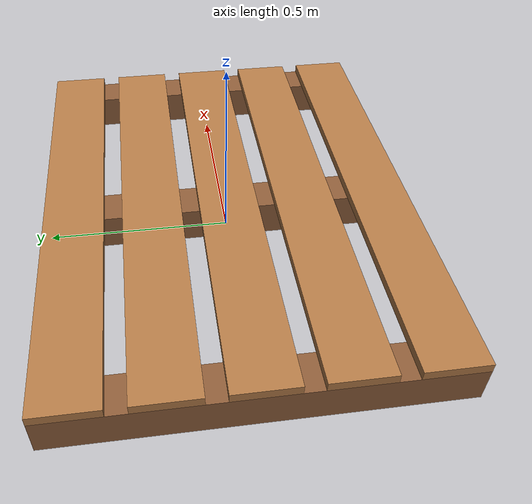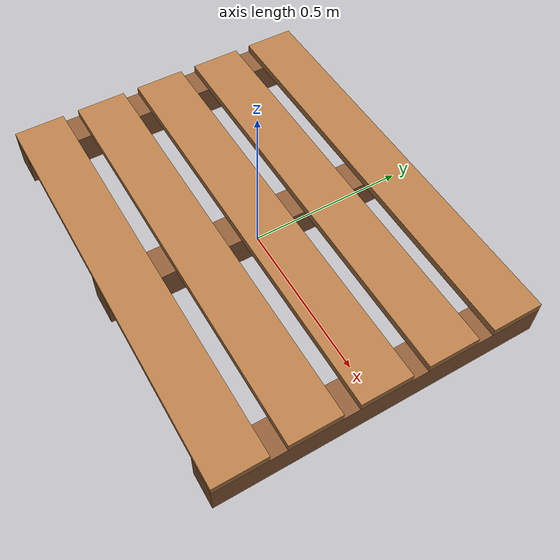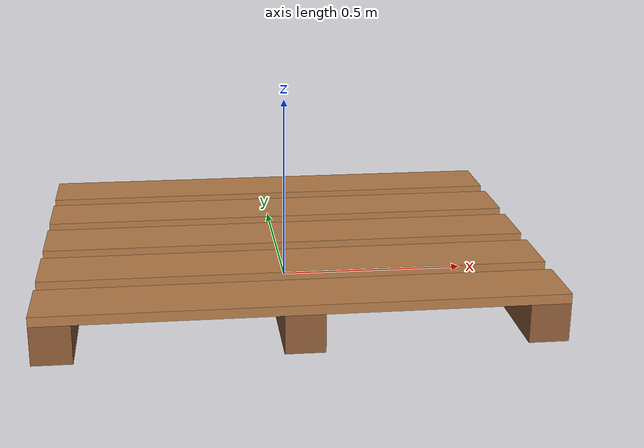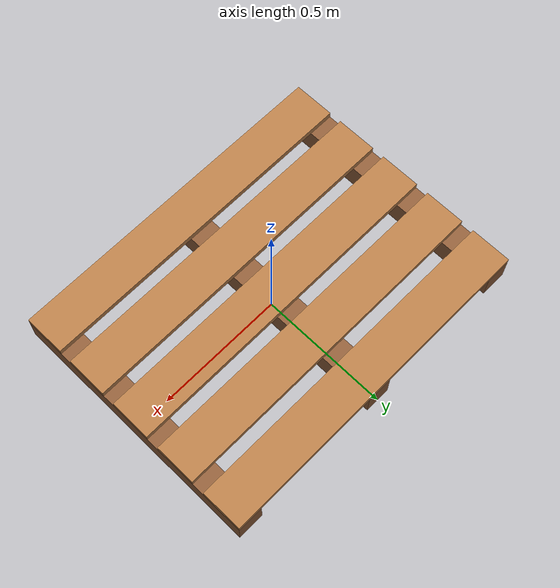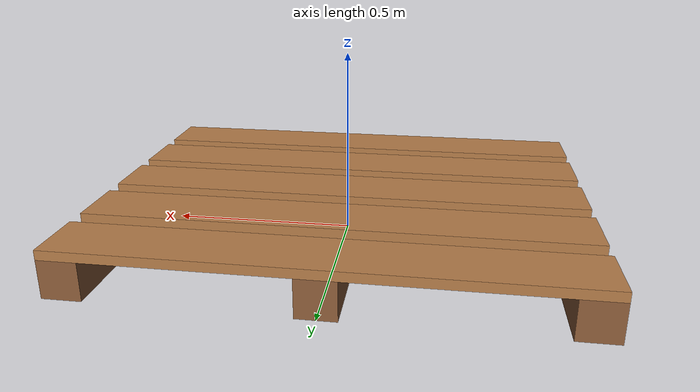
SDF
<?xml version="1.0" ?>
<sdf version="1.9">
  <model name="warehouse_pallet">
    <static>true</static>
    <link name="link">
      <inertial>
        <mass>25</mass>
        <inertia>
          <ixx>3.5</ixx><ixy>0</ixy><ixz>0</ixz>
          <iyy>2.5</iyy><iyz>0</iyz>
          <izz>5.5</izz>
        </inertia>
      </inertial>

      <!-- ===================== Stringers (along Y) ===================== -->
      <visual name="stringer_left">
        <pose>-0.60 0 0.05 0 0 0</pose>
        <geometry><box><size>0.10 1.00 0.10</size></box></geometry>
        <material><ambient>0.45 0.30 0.18 1</ambient><diffuse>0.55 0.36 0.22 1</diffuse></material>
      </visual>
      <collision name="stringer_left_c">
        <pose>-0.60 0 0.05 0 0 0</pose>
        <geometry><box><size>0.10 1.00 0.10</size></box></geometry>
      </collision>

      <visual name="stringer_mid">
        <pose>0 0 0.05 0 0 0</pose>
        <geometry><box><size>0.10 1.00 0.10</size></box></geometry>
        <material><ambient>0.45 0.30 0.18 1</ambient><diffuse>0.55 0.36 0.22 1</diffuse></material>
      </visual>
      <collision name="stringer_mid_c">
        <pose>0 0 0.05 0 0 0</pose>
        <geometry><box><size>0.10 1.00 0.10</size></box></geometry>
      </collision>

      <visual name="stringer_right">
        <pose>0.60 0 0.05 0 0 0</pose>
        <geometry><box><size>0.10 1.00 0.10</size></box></geometry>
        <material><ambient>0.45 0.30 0.18 1</ambient><diffuse>0.55 0.36 0.22 1</diffuse></material>
      </visual>
      <collision name="stringer_right_c">
        <pose>0.60 0 0.05 0 0 0</pose>
        <geometry><box><size>0.10 1.00 0.10</size></box></geometry>
      </collision>

      <!-- ===================== Top deck planks (along X) ===================== -->
      <!-- 5 planks, each 1.30 m wide along X, 0.16 m deep along Y, 0.025 m thick.
           Centered at z = 0.1125 (deck bottom 0.10, top 0.125). -->
      <visual name="deck_1">
        <pose>0 -0.42 0.1125 0 0 0</pose>
        <geometry><box><size>1.30 0.16 0.025</size></box></geometry>
        <material><ambient>0.55 0.38 0.22 1</ambient><diffuse>0.70 0.48 0.28 1</diffuse></material>
      </visual>
      <collision name="deck_1_c">
        <pose>0 -0.42 0.1125 0 0 0</pose>
        <geometry><box><size>1.30 0.16 0.025</size></box></geometry>
      </collision>

      <visual name="deck_2">
        <pose>0 -0.21 0.1125 0 0 0</pose>
        <geometry><box><size>1.30 0.16 0.025</size></box></geometry>
        <material><ambient>0.55 0.38 0.22 1</ambient><diffuse>0.70 0.48 0.28 1</diffuse></material>
      </visual>
      <collision name="deck_2_c">
        <pose>0 -0.21 0.1125 0 0 0</pose>
        <geometry><box><size>1.30 0.16 0.025</size></box></geometry>
      </collision>

      <visual name="deck_3">
        <pose>0 0 0.1125 0 0 0</pose>
        <geometry><box><size>1.30 0.16 0.025</size></box></geometry>
        <material><ambient>0.55 0.38 0.22 1</ambient><diffuse>0.70 0.48 0.28 1</diffuse></material>
      </visual>
      <collision name="deck_3_c">
        <pose>0 0 0.1125 0 0 0</pose>
        <geometry><box><size>1.30 0.16 0.025</size></box></geometry>
      </collision>

      <visual name="deck_4">
        <pose>0 0.21 0.1125 0 0 0</pose>
        <geometry><box><size>1.30 0.16 0.025</size></box></geometry>
        <material><ambient>0.55 0.38 0.22 1</ambient><diffuse>0.70 0.48 0.28 1</diffuse></material>
      </visual>
      <collision name="deck_4_c">
        <pose>0 0.21 0.1125 0 0 0</pose>
        <geometry><box><size>1.30 0.16 0.025</size></box></geometry>
      </collision>

      <visual name="deck_5">
        <pose>0 0.42 0.1125 0 0 0</pose>
        <geometry><box><size>1.30 0.16 0.025</size></box></geometry>
        <material><ambient>0.55 0.38 0.22 1</ambient><diffuse>0.70 0.48 0.28 1</diffuse></material>
      </visual>
      <collision name="deck_5_c">
        <pose>0 0.42 0.1125 0 0 0</pose>
        <geometry><box><size>1.30 0.16 0.025</size></box></geometry>
      </collision>
    </link>
  </model>
</sdf>
